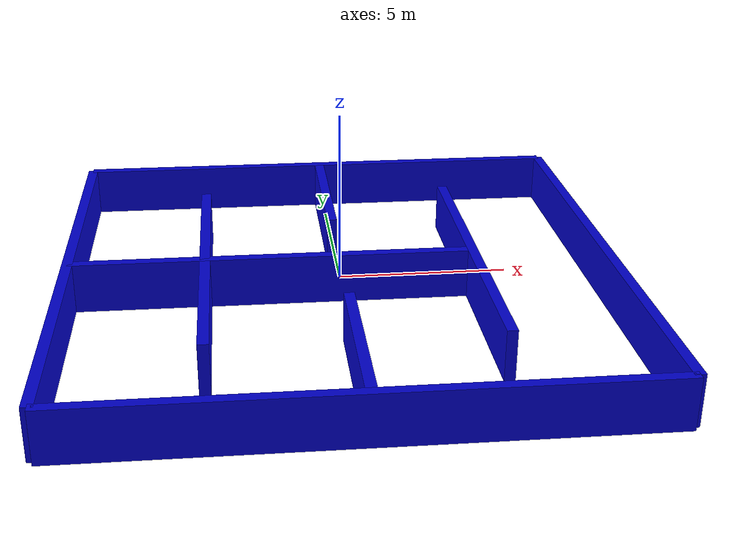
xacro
<?xml version="1.0"?>
<robot xmlns:xacro="http://www.ros.org/wiki/xacro" name="tomas-labyrinth">

  <material name="wall_color">
    <color rgba="0 0 0.8 1"/>
  </material>

  <xacro:property name="wallLen" value="16" />
  <xacro:macro name="make_wall" params="name length">
    <link name="${name}">
      <visual>
        <geometry>
          <box size="${length} 0.31 1.5"/>
        </geometry>
        <material name="wall_color"/>
      </visual>
      <collision>
        <geometry>
          <box size="${length} 0.31 1.5"/>
        </geometry>
      </collision>
      <inertial>
        <origin rpy="0 0 0" xyz="0 0 0"/>
        <mass value="0.5"/>
        <inertia ixx="1" ixy="0" ixz="0" iyy="1" iyz="0" izz="1"/>
      </inertial>
    </link>
  </xacro:macro>

  <xacro:macro name="make_joint" params="parent child xyz rpy">
    <joint name="${parent}-${child}" type="fixed">
      <parent link="${parent}"/>
      <child link="${child}"/>
      <origin xyz="${xyz}" rpy="${rpy}"/>
    </joint>
  </xacro:macro>

  <link name="base">
    <inertial>
      <origin rpy="0 0 0" xyz="0 0 0"/>
      <mass value="0.5"/>
      <inertia ixx="1" ixy="0" ixz="0" iyy="1" iyz="0" izz="1"/>
    </inertial>
  </link>
  <xacro:make_wall name="bottom" length="${wallLen}"/>
  <xacro:make_wall name="top" length="${wallLen}"/>
  <xacro:make_wall name="left" length="${wallLen}"/>
  <xacro:make_wall name="right" length="${wallLen}"/>
  <xacro:make_wall name="horizontal" length="${wallLen*3/4}"/>
  <xacro:make_wall name="vertical_top" length="${wallLen/3}"/>
  <xacro:make_wall name="vertical_bottom" length="${wallLen/3}"/>
  <xacro:make_wall name="vertical_left" length="${wallLen*2/3}"/>
  <xacro:make_wall name="vertical_right" length="${wallLen*2/3}"/>

  <xacro:make_joint parent="base" child="bottom" xyz="0 -${wallLen/2} 0" rpy="0 0 0" />
  <xacro:make_joint parent="base" child="top" xyz="0 ${wallLen/2} 0" rpy="0 0 0" />
  <xacro:make_joint parent="base" child="left" xyz="-${wallLen/2} 0 0" rpy="0 0 ${pi/2}" />
  <xacro:make_joint parent="base" child="right" xyz="${wallLen/2} 0 0" rpy="0 0 ${pi/2}" />

  <xacro:make_joint parent="base" child="horizontal" xyz="-${wallLen/8} 0 0" rpy="0 0 0" />
  <xacro:make_joint parent="base" child="vertical_top" xyz="0 ${wallLen/3} 0" rpy="0 0 ${pi/2}" />
  <xacro:make_joint parent="base" child="vertical_bottom" xyz="0 -${wallLen/3} 0" rpy="0 0 ${pi/2}" />
  <xacro:make_joint parent="base" child="vertical_left" xyz="-${wallLen/4} 0 0" rpy="0 0 ${pi/2}" />
  <xacro:make_joint parent="base" child="vertical_right" xyz="${wallLen/4} 0 0" rpy="0 0 ${pi/2}" />

</robot>
